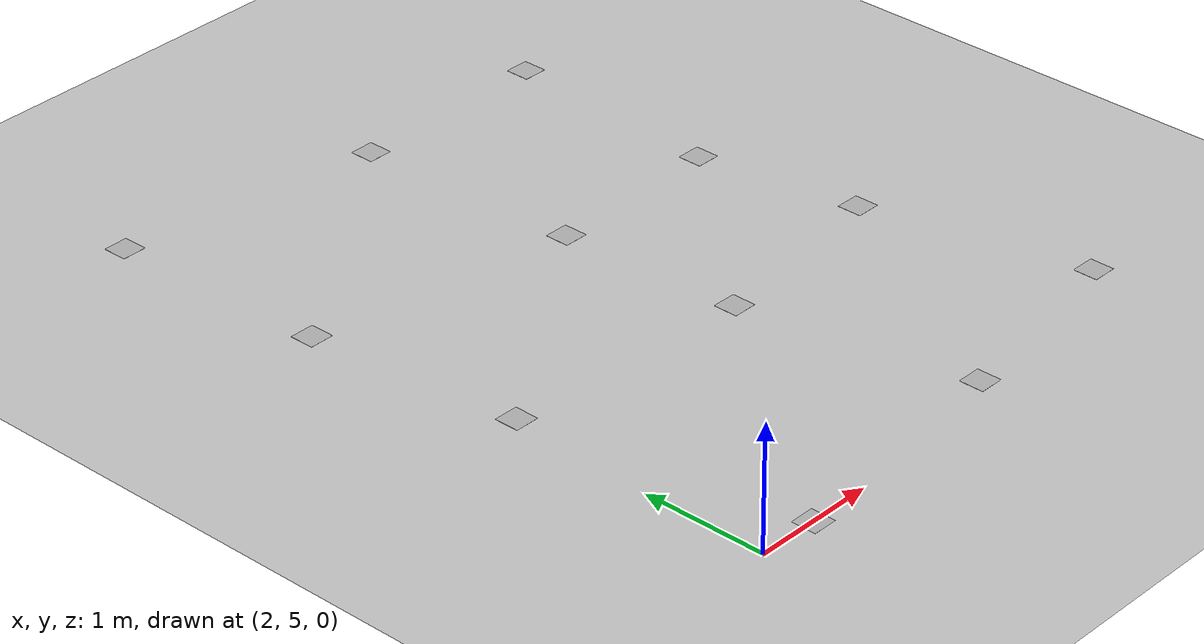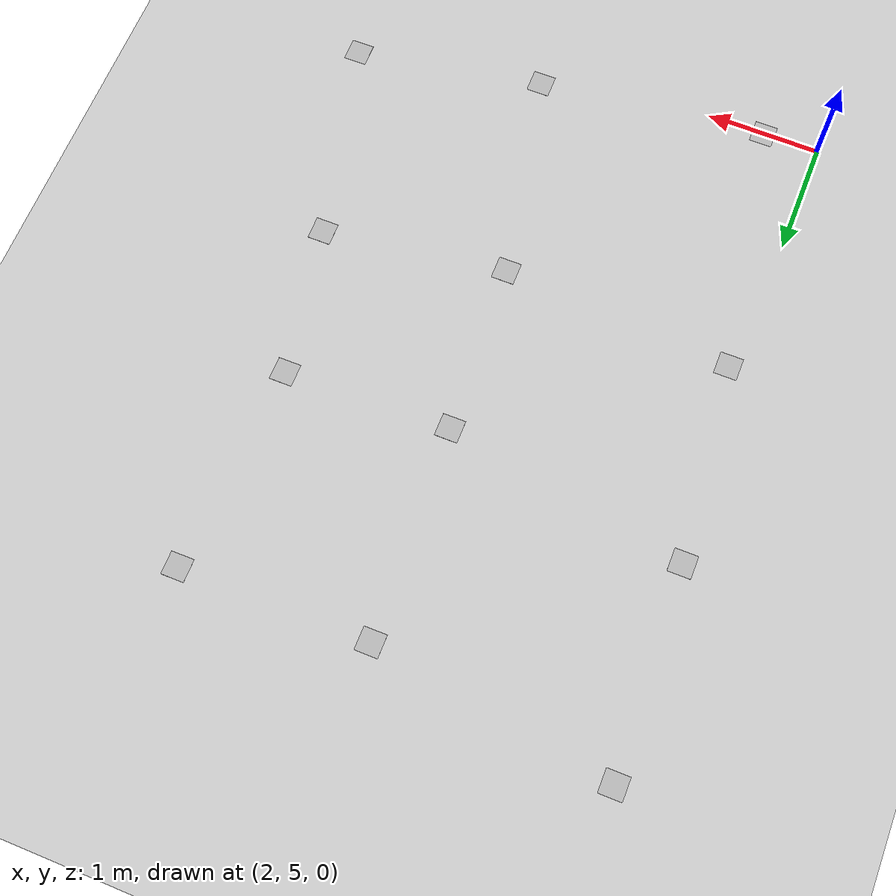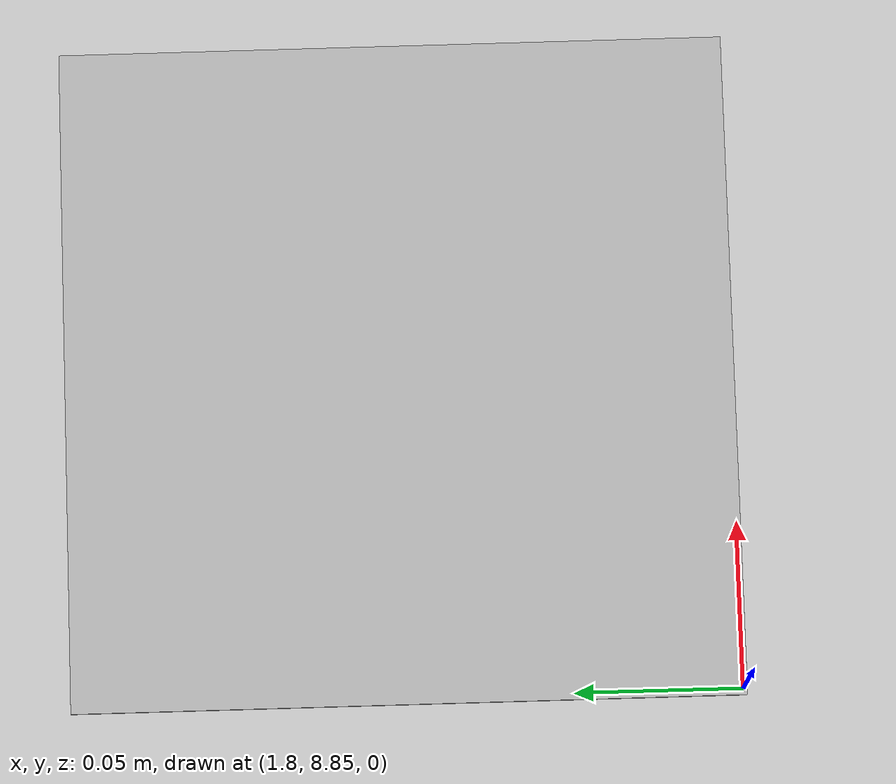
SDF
<sdf version="1.7">
 <world name="mines">
  <spherical_coordinates>
   <surface_model>EARTH_WGS84</surface_model>
   <latitude_deg>50.45559454687066</latitude_deg>
   <longitude_deg>30.165447748588548</longitude_deg>
   <elevation>0.0</elevation>
   <heading_deg>180</heading_deg>
  </spherical_coordinates>
  <light name="sun" type="directional">
   <pose>0 0 10 0 -0 0</pose>
   <diffuse>0.8 0.8 0.8 1</diffuse>
   <specular>0.2 0.2 0.2 1</specular>
   <attenuation>
    <range>1000</range>
    <constant>0.9</constant>
    <linear>0.01</linear>
    <quadratic>0.001</quadratic>
   </attenuation>
   <direction>-0.5 0.1 -0.9</direction>
   <spot><inner_angle>0</inner_angle><outer_angle>0</outer_angle><falloff>0</falloff></spot>
  </light>
  <model name="ground_plane">
   <static>1</static>
   <link name="link">
    <collision name="collision">
     <geometry><plane><normal>0 0 1</normal><size>100 100</size></plane></geometry>
     <surface>
      <contact><collide_bitmask>65535</collide_bitmask></contact>
      <friction><ode><mu>100</mu><mu2>50</mu2></ode></friction>
     </surface>
    </collision>
    <visual name="visual">
     <cast_shadows>0</cast_shadows>
     <geometry><plane><normal>0 0 1</normal><size>100 100</size></plane></geometry>
     <material>
      <script><uri>file://media/materials/scripts/gazebo.material</uri><name>Gazebo/Grey</name></script>
     </material>
    </visual>
   </link>
  </model>
  <gravity>0 0 -9.8</gravity>
  <magnetic_field>6e-06 2.3e-05 -4.2e-05</magnetic_field>
  <atmosphere type="adiabatic"/>
  <physics type="ode">
   <max_step_size>0.001</max_step_size>
   <real_time_factor>1</real_time_factor>
   <real_time_update_rate>1000</real_time_update_rate>
  </physics>
  <scene><ambient>0.4 0.4 0.4 1</ambient><background>0.7 0.7 0.7 1</background><shadows>1</shadows></scene>
  <audio><device>default</device></audio>
  <spherical_coordinates>
   <surface_model>EARTH_WGS84</surface_model>
   <latitude_deg>0</latitude_deg>
   <longitude_deg>0</longitude_deg>
   <elevation>0</elevation>
   <heading_deg>0</heading_deg>
  </spherical_coordinates>
  <model name="Mine">
   <link name="link">
    <collision name="collision"><geometry><box><size>0.2 0.2 0.001</size></box></geometry></collision>
    <visual name="visual">
     <geometry><box><size>0.2 0.2 0.001</size></box></geometry>
     <material>
      <script>
       <uri>model://Mine/materials/scripts</uri>
       <uri>model://Mine/materials/textures</uri>
       <name>Mine/Diffuse</name>
      </script>
     </material>
    </visual>
    <inertial>
     <inertia><ixx>1</ixx><ixy>0</ixy><ixz>0</ixz><iyy>1</iyy><iyz>0</iyz><izz>1</izz></inertia>
     <mass>1</mass>
    </inertial>
   </link>
   <pose>1.82635 10.7475 0.0005 -0 -0 -0</pose>
  </model>
  <model name="Mine_0">
   <link name="link">
    <collision name="collision"><geometry><box><size>0.2 0.2 0.001</size></box></geometry></collision>
    <visual name="visual">
     <geometry><box><size>0.2 0.2 0.001</size></box></geometry>
     <material>
      <script>
       <uri>model://Mine/materials/scripts</uri>
       <uri>model://Mine/materials/textures</uri>
       <name>Mine/Diffuse</name>
      </script>
     </material>
    </visual>
    <inertial>
     <inertia><ixx>1</ixx><ixy>0</ixy><ixz>0</ixz><iyy>1</iyy><iyz>0</iyz><izz>1</izz></inertia>
     <mass>1</mass>
    </inertial>
   </link>
   <pose>3.95695 10.425 0.000501 -1e-05 -3e-06 0</pose>
  </model>
  <model name="Mine_1">
   <link name="link">
    <collision name="collision"><geometry><box><size>0.2 0.2 0.001</size></box></geometry></collision>
    <visual name="visual">
     <geometry><box><size>0.2 0.2 0.001</size></box></geometry>
     <material>
      <script>
       <uri>model://Mine/materials/scripts</uri>
       <uri>model://Mine/materials/textures</uri>
       <name>Mine/Diffuse</name>
      </script>
     </material>
    </visual>
    <inertial>
     <inertia><ixx>1</ixx><ixy>0</ixy><ixz>0</ixz><iyy>1</iyy><iyz>0</iyz><izz>1</izz></inertia>
     <mass>1</mass>
    </inertial>
   </link>
   <pose>5.62057 10.4303 0.00049 -1e-06 0 0</pose>
  </model>
  <model name="Mine_2">
   <link name="link">
    <collision name="collision"><geometry><box><size>0.2 0.2 0.001</size></box></geometry></collision>
    <visual name="visual">
     <geometry><box><size>0.2 0.2 0.001</size></box></geometry>
     <material>
      <script>
       <uri>model://Mine/materials/scripts</uri>
       <uri>model://Mine/materials/textures</uri>
       <name>Mine/Diffuse</name>
      </script>
     </material>
    </visual>
    <inertial>
     <inertia><ixx>1</ixx><ixy>0</ixy><ixz>0</ixz><iyy>1</iyy><iyz>0</iyz><izz>1</izz></inertia>
     <mass>1</mass>
    </inertial>
   </link>
   <pose>1.89809 8.9489 0.0005 0 -0 0</pose>
  </model>
  <model name="Mine_2_clone">
   <link name="link">
    <collision name="collision"><geometry><box><size>0.2 0.2 0.001</size></box></geometry></collision>
    <visual name="visual">
     <geometry><box><size>0.2 0.2 0.001</size></box></geometry>
     <material>
      <script>
       <uri>model://Mine/materials/scripts</uri>
       <uri>model://Mine/materials/textures</uri>
       <name>Mine/Diffuse</name>
      </script>
     </material>
    </visual>
    <inertial>
     <inertia><ixx>1</ixx><ixy>0</ixy><ixz>0</ixz><iyy>1</iyy><iyz>0</iyz><izz>1</izz></inertia>
     <mass>1</mass>
    </inertial>
   </link>
   <pose>4.04531 8.56916 0.0005 0 3e-06 0</pose>
  </model>
  <model name="Mine_2_clone_0">
   <link name="link">
    <collision name="collision"><geometry><box><size>0.2 0.2 0.001</size></box></geometry></collision>
    <visual name="visual">
     <geometry><box><size>0.2 0.2 0.001</size></box></geometry>
     <material>
      <script>
       <uri>model://Mine/materials/scripts</uri>
       <uri>model://Mine/materials/textures</uri>
       <name>Mine/Diffuse</name>
      </script>
     </material>
    </visual>
    <inertial>
     <inertia><ixx>1</ixx><ixy>0</ixy><ixz>0</ixz><iyy>1</iyy><iyz>0</iyz><izz>1</izz></inertia>
     <mass>1</mass>
    </inertial>
   </link>
   <pose>5.51175 8.60939 0.0005 3e-06 3e-06 0</pose>
  </model>
  <model name="Mine_2_clone_1">
   <link name="link">
    <collision name="collision"><geometry><box><size>0.2 0.2 0.001</size></box></geometry></collision>
    <visual name="visual">
     <geometry><box><size>0.2 0.2 0.001</size></box></geometry>
     <material>
      <script>
       <uri>model://Mine/materials/scripts</uri>
       <uri>model://Mine/materials/textures</uri>
       <name>Mine/Diffuse</name>
      </script>
     </material>
    </visual>
    <inertial>
     <inertia><ixx>1</ixx><ixy>0</ixy><ixz>0</ixz><iyy>1</iyy><iyz>0</iyz><izz>1</izz></inertia>
     <mass>1</mass>
    </inertial>
   </link>
   <pose>2.08856 7.21654 0.000491 -2e-06 -1e-06 0</pose>
  </model>
  <model name="Mine_2_clone_2">
   <link name="link">
    <collision name="collision"><geometry><box><size>0.2 0.2 0.001</size></box></geometry></collision>
    <visual name="visual">
     <geometry><box><size>0.2 0.2 0.001</size></box></geometry>
     <material>
      <script>
       <uri>model://Mine/materials/scripts</uri>
       <uri>model://Mine/materials/textures</uri>
       <name>Mine/Diffuse</name>
      </script>
     </material>
    </visual>
    <inertial>
     <inertia><ixx>1</ixx><ixy>0</ixy><ixz>0</ixz><iyy>1</iyy><iyz>0</iyz><izz>1</izz></inertia>
     <mass>1</mass>
    </inertial>
   </link>
   <pose>4.13396 7.07463 0.000491 0 -3e-06 0</pose>
  </model>
  <model name="Mine_2_clone_3">
   <link name="link">
    <collision name="collision"><geometry><box><size>0.2 0.2 0.001</size></box></geometry></collision>
    <visual name="visual">
     <geometry><box><size>0.2 0.2 0.001</size></box></geometry>
     <material>
      <script>
       <uri>model://Mine/materials/scripts</uri>
       <uri>model://Mine/materials/textures</uri>
       <name>Mine/Diffuse</name>
      </script>
     </material>
    </visual>
    <inertial>
     <inertia><ixx>1</ixx><ixy>0</ixy><ixz>0</ixz><iyy>1</iyy><iyz>0</iyz><izz>1</izz></inertia>
     <mass>1</mass>
    </inertial>
   </link>
   <pose>5.7462 7.29922 0.000504 2.4e-05 -1.2e-05 -0</pose>
  </model>
  <model name="Mine_2_clone_4">
   <link name="link">
    <collision name="collision"><geometry><box><size>0.2 0.2 0.001</size></box></geometry></collision>
    <visual name="visual">
     <geometry><box><size>0.2 0.2 0.001</size></box></geometry>
     <material>
      <script>
       <uri>model://Mine/materials/scripts</uri>
       <uri>model://Mine/materials/textures</uri>
       <name>Mine/Diffuse</name>
      </script>
     </material>
    </visual>
    <inertial>
     <inertia><ixx>1</ixx><ixy>0</ixy><ixz>0</ixz><iyy>1</iyy><iyz>0</iyz><izz>1</izz></inertia>
     <mass>1</mass>
    </inertial>
   </link>
   <pose>2.49393 5 0.00049 1e-06 -0 0</pose>
  </model>
  <model name="Mine_2_clone_5">
   <link name="link">
    <collision name="collision"><geometry><box><size>0.2 0.2 0.001</size></box></geometry></collision>
    <visual name="visual">
     <geometry><box><size>0.2 0.2 0.001</size></box></geometry>
     <material>
      <script>
       <uri>model://Mine/materials/scripts</uri>
       <uri>model://Mine/materials/textures</uri>
       <name>Mine/Diffuse</name>
      </script>
     </material>
    </visual>
    <inertial>
     <inertia><ixx>1</ixx><ixy>0</ixy><ixz>0</ixz><iyy>1</iyy><iyz>0</iyz><izz>1</izz></inertia>
     <mass>1</mass>
    </inertial>
   </link>
   <pose>4.51635 5.23206 0.0005 1e-06 1e-06 0</pose>
  </model>
  <model name="Mine_2_clone_6">
   <link name="link">
    <collision name="collision"><geometry><box><size>0.2 0.2 0.001</size></box></geometry></collision>
    <visual name="visual">
     <geometry><box><size>0.2 0.2 0.001</size></box></geometry>
     <material>
      <script>
       <uri>model://Mine/materials/scripts</uri>
       <uri>model://Mine/materials/textures</uri>
       <name>Mine/Diffuse</name>
      </script>
     </material>
    </visual>
    <inertial>
     <inertia><ixx>1</ixx><ixy>0</ixy><ixz>0</ixz><iyy>1</iyy><iyz>0</iyz><izz>1</izz></inertia>
     <mass>1</mass>
    </inertial>
   </link>
   <pose>6.1756 5.52506 0.0005 -1e-06 -3e-06 -0</pose>
  </model>
 </world>
</sdf>
